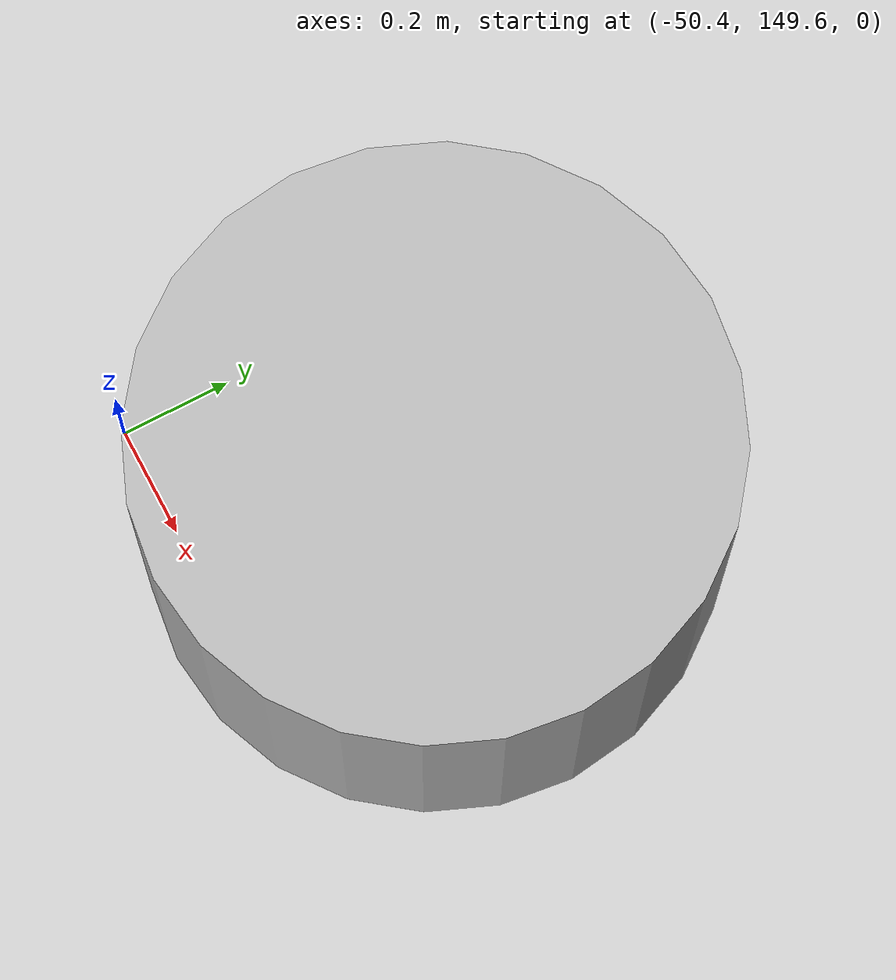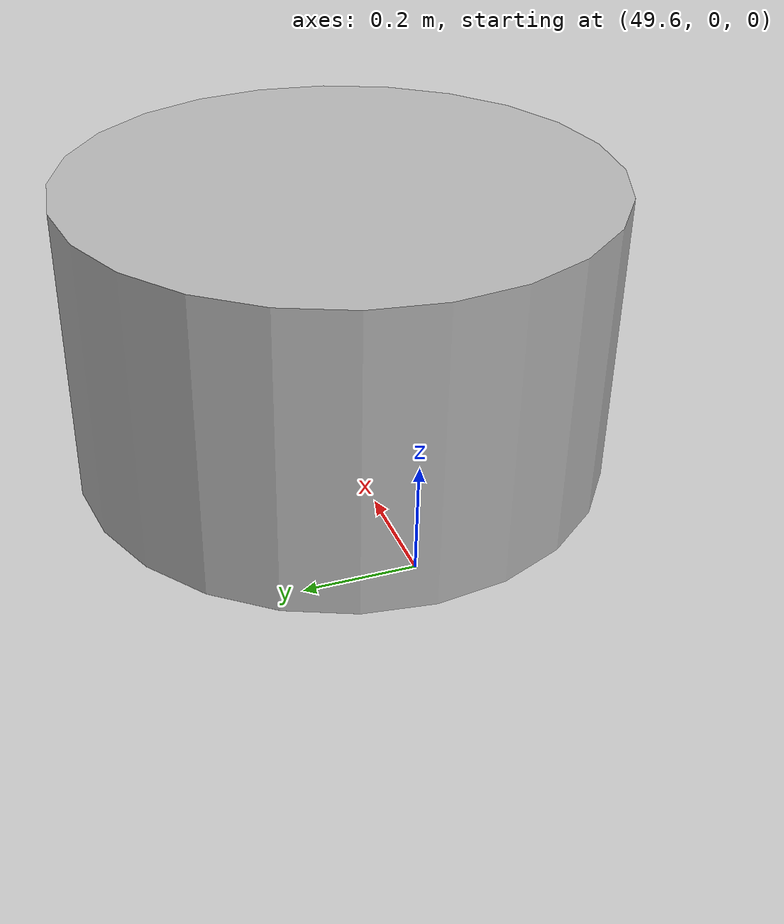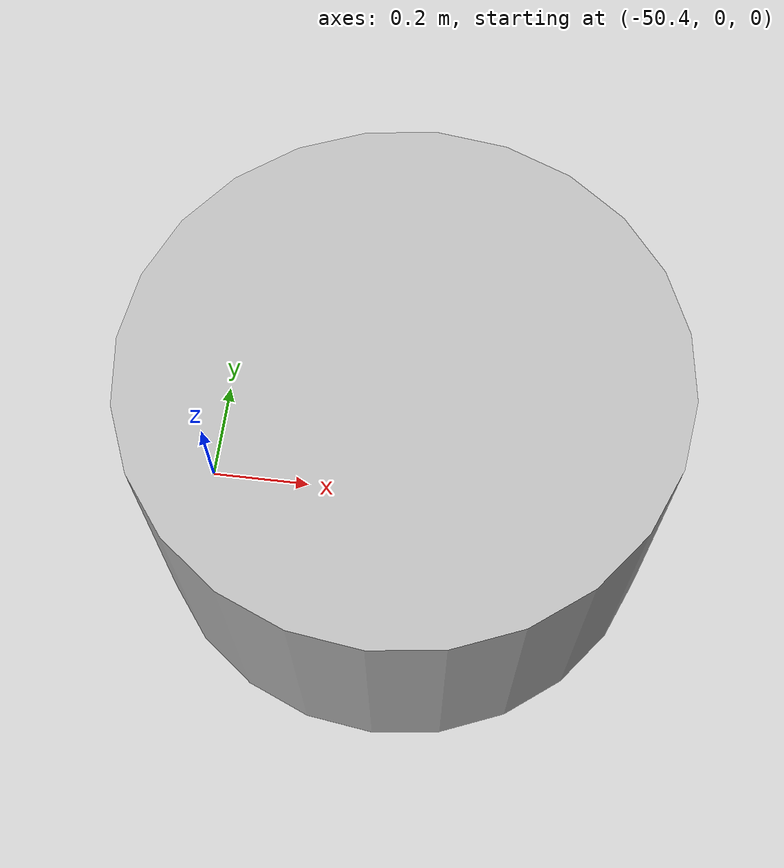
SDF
<sdf version="1.6">
 <world name="default">
  <spherical_coordinates>
   <world_frame_orientation>ENU</world_frame_orientation>
   <latitude_deg>36</latitude_deg>
   <longitude_deg>25</longitude_deg>
  </spherical_coordinates>
  <include><uri>model://sun</uri></include>
  <include><uri>model://ground_plane</uri></include>
  <include><name>front left boja</name><uri>model://big_cylinder</uri><pose>-50 0 0.05 0 0 0</pose></include>
  <include><name>front right boja</name><uri>model://big_cylinder</uri><pose>50 0 0.05 0 0 0</pose></include>
  <include><name>back left boja</name><uri>model://big_cylinder</uri><pose>-50 150 0.05 0 0 0</pose></include>
  <include><name>back right boja</name><uri>model://big_cylinder</uri><pose>50 150 0.05 0 0 0</pose></include>
 </world>
</sdf>

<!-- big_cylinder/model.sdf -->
<sdf version='1.4'>
  <model name='big_cylinder'>
    <static>0</static>
    <pose>0 0 -0.5 0 0 0</pose>

        <link name="link">
        <inertial>
            <mass>5</mass>
            <inertia>
            <ixx>0.083</ixx>
            <ixy>0.083</ixy>
            <ixz>0.083</ixz>
            <iyy>0.083</iyy>
            <iyz>0.083</iyz>
            <izz>0.083</izz>
            </inertia>
        </inertial>
        <collision name="collision">
            <geometry>
                <cylinder>
                    <radius>0.5</radius>
                    <length>1</length>
                </cylinder>
            </geometry>
        </collision>
        <visual name="visual">
            <geometry>
                <cylinder>
                    <radius>0.5</radius>
                    <length>1</length>
                </cylinder>
            </geometry>
        </visual>
        </link>

  </model>
</sdf>
